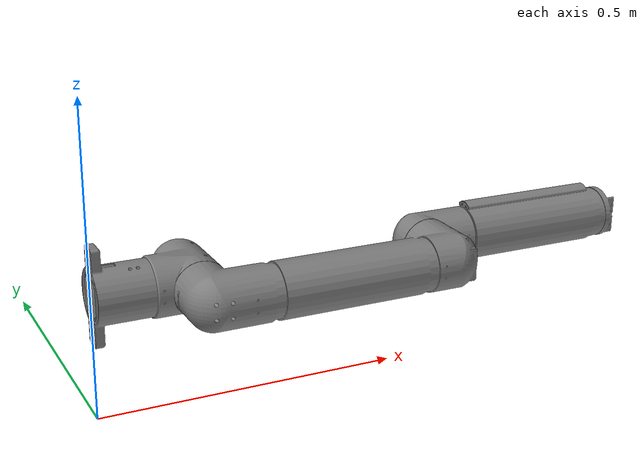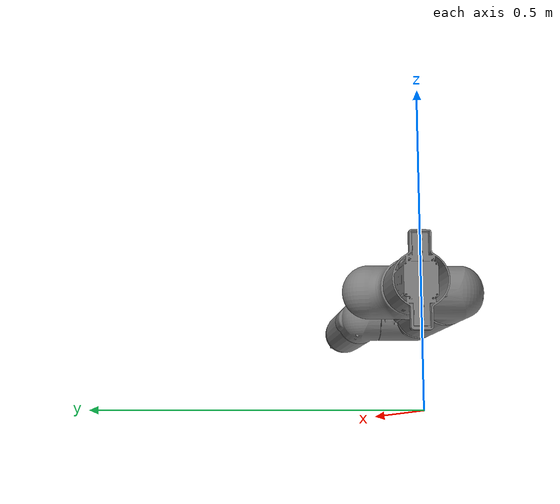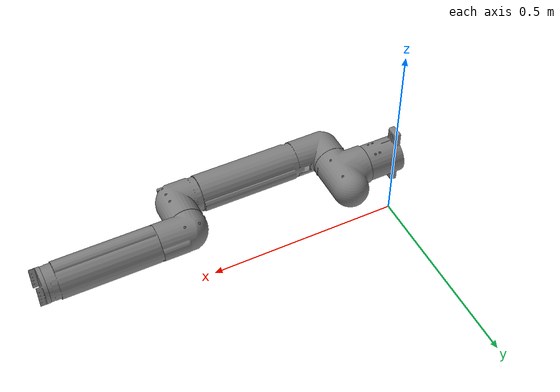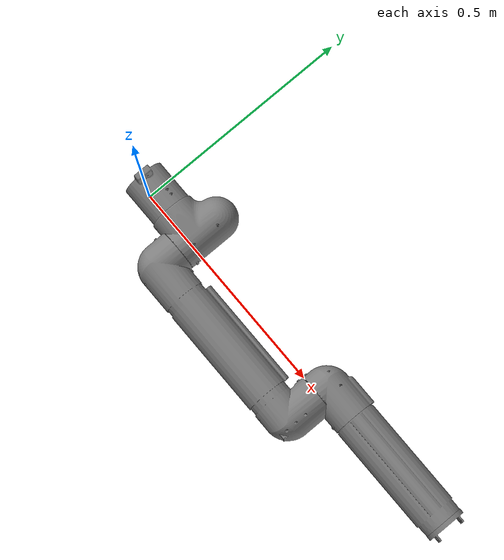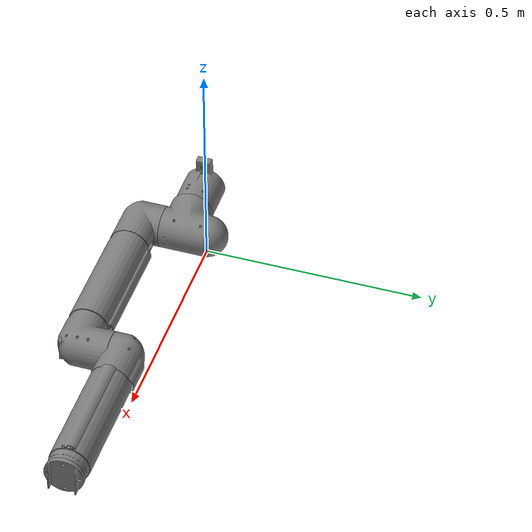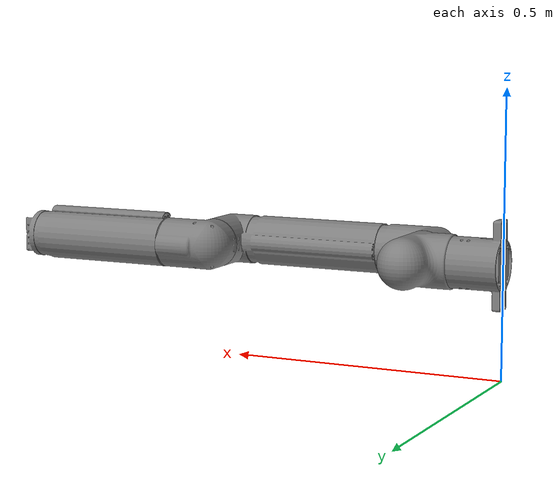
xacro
<?xml version="1.0"?>
<robot name="protac" xmlns:xacro="http://ros.org/wiki/xacro">
  <xacro:include filename="$(find protac_description)/urdf/protac.xacro" />
  <xacro:include filename="$(find protac_description)/urdf/protac.ros2_control_gazebo_velocity.xacro" />

  <link name="world"/>

  <xacro:protac parent="world">
    <origin xyz="0 0 0.2" rpy="3.141592654 -1.570796327 0." />
  </xacro:protac>

  <xacro:protac_ros2_control name="protac_ros2_control" />
</robot>

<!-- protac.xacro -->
<robot xmlns:xacro="http://ros.org/wiki/xacro">

  <!-- Import Rviz colors -->
  <xacro:include filename="$(find protac_description)/urdf/protac.material.xacro" />

  <xacro:macro name="protac" params="parent *origin">
    <link name="base_link">
      <inertial>
        <origin rpy="0 0 0" xyz="-4.0682e-11 5.8587e-06 0.05729"/>
        <mass value="0.005"/>
        <inertia ixx="9.4e-05" ixy="-0.0" ixz="0.0" iyy="5.5e-05" iyz="0.0" izz="8.2e-05"/>
      </inertial>
      <visual>
        <origin rpy="0 0 0" xyz="0 0 0"/>
        <geometry>
          <mesh filename="package://protac_description/meshes/base_link.STL"/>
        </geometry>
        <material name="grey"/>
      </visual>
      <collision>
        <origin rpy="0 0 0" xyz="0 0 0"/>
        <geometry>
          <mesh filename="package://protac_description/meshes/base_link.STL"/>
        </geometry>
      </collision>
    </link>

    <link name="link_1">
      <inertial>
        <origin rpy="0 0 0" xyz="-4.2889e-11 0.0036799 0.032082"/>
        <mass value="0.005"/>
        <inertia ixx="3e-06" ixy="-0.0" ixz="-0.0" iyy="1e-06" iyz="0.0" izz="4e-06"/>
      </inertial>
      <visual>
        <origin rpy="0 0 0" xyz="0 0 0"/>
        <geometry>
          <mesh filename="package://protac_description/meshes/link1.STL"/>
        </geometry>
        <material name="grey"/>
      </visual>
      <collision>
        <origin rpy="0 0 0" xyz="0 0 0"/>
        <geometry>
          <mesh filename="package://protac_description/meshes/link1.STL"/>
        </geometry>
      </collision>
    </link>

    <link name="link_2">
      <inertial>
        <origin rpy="0 0 0" xyz="4.0646e-05 -0.28131 -0.0044042"/>
        <mass value="0.005"/>
        <inertia ixx="9.4e-05" ixy="0.0" ixz="-0.0" iyy="8.2e-05" iyz="0.0" izz="5.5e-05"/>
      </inertial>
      <visual>
        <origin rpy="0 0 0" xyz="0 0 0"/>
        <geometry>
          <mesh filename="package://protac_description/meshes/link2.STL"/>
        </geometry>
        <material name="grey"/>
      </visual>
      <collision>
        <origin rpy="0 0 0" xyz="0 0 0"/>
        <geometry>
          <mesh filename="package://protac_description/meshes/link2.STL"/>
        </geometry>
      </collision>
    </link>

    <link name="link_3">
      <inertial>
        <origin rpy="0 0 0" xyz="0.01294 3.5796e-05 0.025586"/>
        <mass value="0.005"/>
        <inertia ixx="3.2e-05" ixy="-0.0" ixz="0.0" iyy="2e-05" iyz="-0.0" izz="1.9e-05"/>
      </inertial>
      <visual>
        <origin rpy="0 0 0" xyz="0 0 0"/>
        <geometry>
          <mesh filename="package://protac_description/meshes/link3.STL"/>
        </geometry>
        <material name="grey"/>
      </visual>
      <collision>
        <origin rpy="0 0 0" xyz="0 0 0"/>
        <geometry>
          <mesh filename="package://protac_description/meshes/link3.STL"/>
        </geometry>
      </collision>
    </link>

    <link name="link_4">
      <inertial>
        <origin rpy="0 0 0" xyz="0.0052747 0.00023019 0.17217"/>
        <mass value="0.005"/>
        <inertia ixx="3.2e-05" ixy="-0.0" ixz="0.0" iyy="2e-05" iyz="-0.0" izz="1.9e-05"/>
      </inertial>
      <visual>
        <origin rpy="0 0 0" xyz="0 0 0"/>
        <geometry>
          <mesh filename="package://protac_description/meshes/link4.STL"/>
        </geometry>
        <material name="grey"/>
      </visual>
      <collision>
        <origin rpy="0 0 0" xyz="0 0 0"/>
        <geometry>
          <mesh filename="package://protac_description/meshes/link4.STL"/>
        </geometry>
      </collision>
    </link>

    <link name="eef_link">
      <inertial>
        <origin rpy="0 0 0" xyz="0.00105476762353651 -0.00054399845541328 -0.00395532957526007"/>
        <mass value="0.001"/>
        <inertia ixx="3.2e-05" ixy="-0.0" ixz="0.0" iyy="2e-05" iyz="-0.0" izz="1.9e-05"/>
      </inertial>
      <visual>
        <origin rpy="0 0 0" xyz="0 0 0"/>
        <geometry>
          <mesh filename="package://protac_description/meshes/eef_link.STL"/>
        </geometry>
        <material name="grey"/>
      </visual>
      <collision>
        <origin rpy="0 0 0" xyz="0 0 0"/>
        <geometry>
          <mesh filename="package://protac_description/meshes/eef_link.STL"/>
        </geometry>
      </collision>
    </link>

    <joint name="origin_to_base_link" type="fixed">
      <xacro:insert_block name="origin" />
      <parent link="${parent}" />
      <child link="base_link" />
    </joint>

    <joint name="joint1" type="revolute">
      <origin rpy="${-radians(90)} 0 0" xyz="0. 0. 0.159"/>
      <parent link="base_link"/>
      <child link="link_1"/>
      <axis xyz="0.0 -1.0 0.0"/>
      <limit effort="10" lower="${-radians(160)}" upper="${radians(160)}" velocity="${28 / 60.0 * 2.0 * pi}"/>
      <dynamics damping="0.7" friction="0.7"/>
    </joint>

    <joint name="joint2" type="revolute">
      <origin rpy="0 0 0" xyz="0. 0. 0.092"/>
      <parent link="link_1"/>
      <child link="link_2"/>
      <axis xyz="0.0 0.0 1.0"/>
      <limit effort="44" lower="${-radians(160)}" upper="${radians(160)}" velocity="${28 / 60.0 * 2.0 * pi}"/>
      <dynamics damping="0.7" friction="0.7"/>
    </joint>

    <joint name="joint3" type="revolute">
      <origin rpy="${radians(90)} 0. 0." xyz="0. -0.4 -0.102"/>
      <parent link="link_2"/>
      <child link="link_3"/>
      <axis xyz="0.0 -1.0 0.0"/>
      <limit effort="25" lower="${-radians(160)}" upper="${radians(160)}" velocity="${28 / 60.0 * 2.0 * pi}"/>
      <dynamics damping="0.7" friction="0.7"/>
    </joint>

    <joint name="joint4" type="revolute">
      <origin rpy="0 0 0" xyz="0. 0. 0.051"/>
      <parent link="link_3"/>
      <child link="link_4"/>
      <axis xyz="0.0 0.0 1.0"/>
      <limit effort="5" lower="${-radians(160)}" upper="${radians(160)}" velocity="${28 / 60.0 * 2.0 * pi}"/>
      <dynamics damping="0.7" friction="0.7"/>
    </joint>

    <joint name="joint5" type="fixed">
      <origin rpy="0 0 0" xyz="0. 0. 0.31"/>
      <parent link="link_4"/>
      <child link="eef_link"/>
    </joint>

  </xacro:macro>
</robot>

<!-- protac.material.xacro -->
<robot>

  <material name="black">
    <color rgba="0.0 0.0 0.0 1.0"/>
  </material>

  <material name="white">
    <color rgba="1.0 1.0 1.0 1.0"/>
  </material>

  <material name="red">
    <color rgba="0.8 0.0 0.0 1.0"/>
  </material>

  <material name="blue">
    <color rgba="0.0 0.0 0.8 1.0"/>
  </material>

  <material name="green">
    <color rgba="0.0 0.8 0.0 1.0"/>
  </material>

  <material name="grey">
    <color rgba="0.5 0.5 0.5 1.0"/>
  </material>

</robot>
